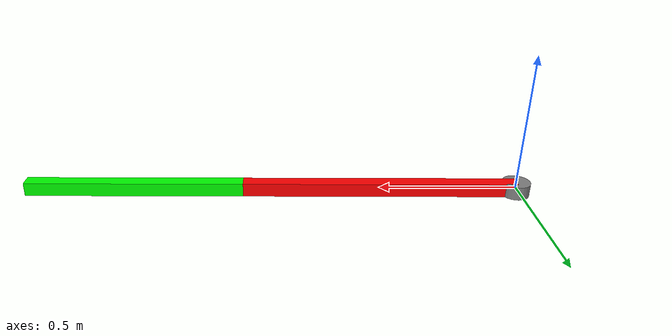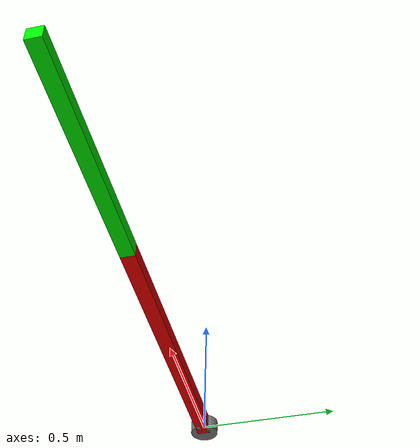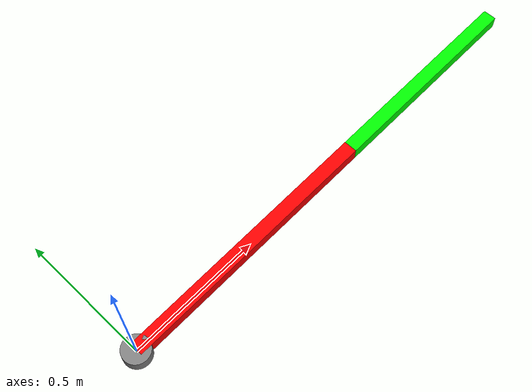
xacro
<?xml version="1.0"?>
<robot xmlns:xacro="http://ros.org/wiki/xacro" name="planar_2r">
  <!-- Kinematic parameters -->
  <xacro:arg name="a1" default="1.0"/>
  <xacro:arg name="a2" default="0.8"/>
  <xacro:arg name="width" default="0.05"/>

  <!-- Dynamic parameters -->
  <xacro:arg name="l1" default="${$(arg a1) * 0.5}"/>
  <xacro:arg name="l2" default="${$(arg a2) * 0.5}"/>
  <xacro:arg name="m1" default="50"/>
  <xacro:arg name="m2" default="40"/>
  <xacro:arg name="I1" default="10"/>
  <xacro:arg name="I2" default="8"/>

  <!-- Base link -->
  <link name="base_link">
    <visual>
      <geometry>
        <cylinder length="$(arg width)" radius="$(arg width)"/>
      </geometry>
      <origin xyz="0 0 0"/>
      <material name="grey">
        <color rgba="0.5 0.5 0.5 1.0"/>
      </material>
    </visual>
  </link>

  <!-- Link 1 -->
  <link name="link1">
    <inertial>
      <origin xyz="$(arg l1) 0 0" rpy="0 0 0"/>
      <mass value="$(arg m1)"/>
      <inertia ixx="0" ixy="0" ixz="0" iyy="0" iyz="0" izz="$(arg I1)"/>
    </inertial>
    <visual>
      <geometry>
        <box size="$(arg a1) $(arg width) $(arg width)"/>
      </geometry>
      <origin xyz="${$(arg a1) * 0.5} 0 0"/>
      <material name="red">
        <color rgba="1 0 0 1"/>
      </material>
    </visual>
  </link>

  <joint name="joint1" type="revolute">
    <parent link="base_link"/>
    <child link="link1"/>
    <origin xyz="0 0 0" rpy="0 0 0"/>
    <axis xyz="0 0 1"/>
    <limit lower="${-pi}" upper="${pi}" effort="1.0" velocity="1.0"/>
  </joint>

  <!-- Link 2 -->
  <link name="link2">
    <inertial>
      <origin xyz="$(arg l2) 0 0" rpy="0 0 0"/>
      <mass value="$(arg m2)"/>
      <inertia ixx="0" ixy="0" ixz="0" iyy="0" iyz="0" izz="$(arg I2)"/>
    </inertial>
    <visual>
      <geometry>
        <box size="$(arg a2) $(arg width) $(arg width)"/>
      </geometry>
      <origin xyz="${$(arg a2) * 0.5} 0 0"/>
      <material name="green">
        <color rgba="0 1 0 1"/>
      </material>
    </visual>
  </link>

  <joint name="joint2" type="revolute">
    <parent link="link1"/>
    <child link="link2"/>
    <origin xyz="$(arg a1) 0 0" rpy="0 0 0"/>
    <axis xyz="0 0 1"/>
    <limit lower="${-pi}" upper="${pi}" effort="1.0" velocity="1.0"/>
  </joint>

  <!-- Flange -->
  <link name="flange"/>

  <joint name="flange_joint" type="fixed">
    <parent link="link2"/>
    <child link="flange"/>
    <origin xyz="$(arg a2) 0 0" rpy="0 0 0 "/>
  </joint>
</robot>
